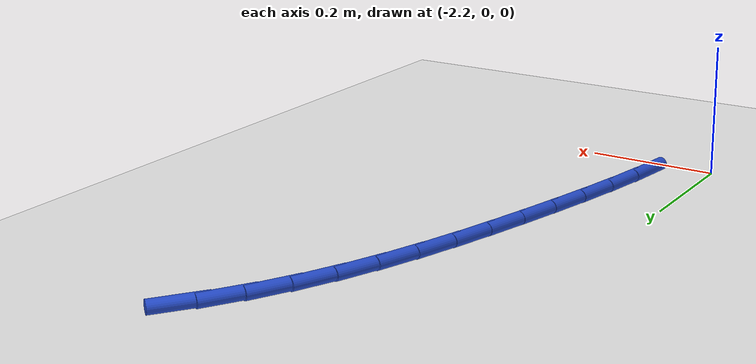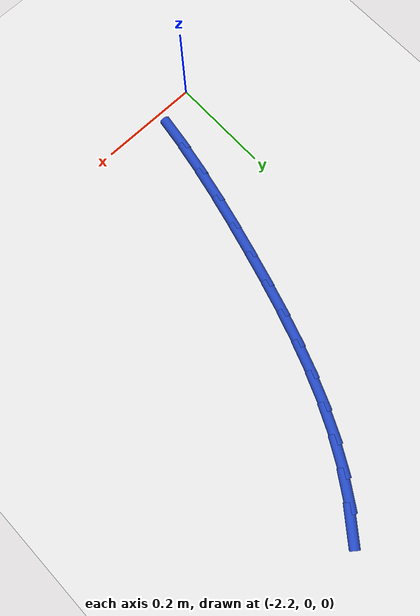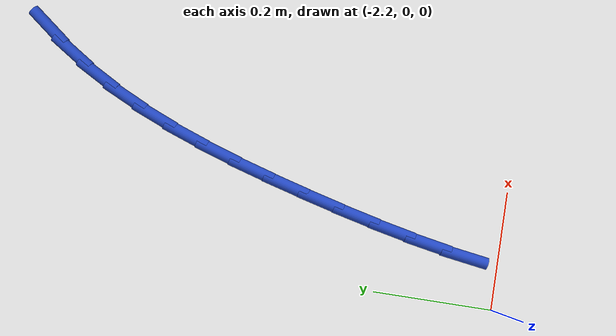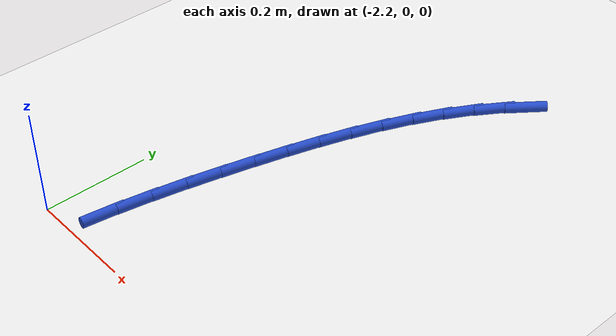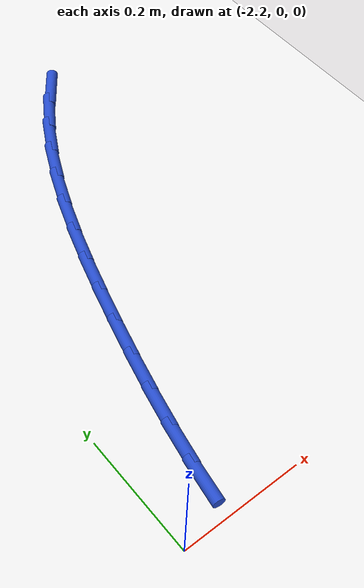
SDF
<sdf version="1.6">
 <world name="default">
  <model name="ground_plane">
   <static>1</static>
   <link name="link">
    <collision name="collision">
     <geometry><plane><normal>0 0 1</normal><size>100 100</size></plane></geometry>
     <surface><friction><ode><mu>100</mu><mu2>50</mu2></ode></friction></surface>
    </collision>
    <visual name="visual">
     <cast_shadows>0</cast_shadows>
     <geometry><plane><normal>0 0 1</normal><size>100 100</size></plane></geometry>
     <material>
      <script><uri>file://media/materials/scripts/gazebo.material</uri><name>Gazebo/WhiteGlow</name></script>
     </material>
    </visual>
   </link>
  </model>
  <model name="line">
   <link name="link_41">
    <pose>-1.8425104552891545 0.8127185309470454 0.01 0 1.57 0.9106029460889032</pose>
    <collision name="collision">
     <geometry><cylinder><radius>0.01</radius><length>0.08</length></cylinder></geometry>
    </collision>
    <visual name="visual">
     <material>
      <script><name>Gazebo/Blue</name><uri>file://media/materials/scripts/gazebo.material</uri></script>
     </material>
     <geometry><cylinder><radius>0.01</radius><length>0.08</length></cylinder></geometry>
    </visual>
   </link>
   <link name="link_42">
    <pose>-1.8786217293413534 0.7662082466428953 0.01 0 1.57 0.9939504107751688</pose>
    <collision name="collision">
     <geometry><cylinder><radius>0.01</radius><length>0.08</length></cylinder></geometry>
    </collision>
    <visual name="visual">
     <material>
      <script><name>Gazebo/Blue</name><uri>file://media/materials/scripts/gazebo.material</uri></script>
     </material>
     <geometry><cylinder><radius>0.01</radius><length>0.08</length></cylinder></geometry>
    </visual>
   </link>
   <link name="link_43">
    <pose>-1.9108846272863615 0.716624111231179 0.01 0 1.57 1.0674056970246177</pose>
    <collision name="collision">
     <geometry><cylinder><radius>0.01</radius><length>0.08</length></cylinder></geometry>
    </collision>
    <visual name="visual">
     <material>
      <script><name>Gazebo/Blue</name><uri>file://media/materials/scripts/gazebo.material</uri></script>
     </material>
     <geometry><cylinder><radius>0.01</radius><length>0.08</length></cylinder></geometry>
    </visual>
   </link>
   <link name="link_44">
    <pose>-1.9397054802930875 0.6642904254776733 0.01 0 1.57 1.1307111406427612</pose>
    <collision name="collision">
     <geometry><cylinder><radius>0.01</radius><length>0.08</length></cylinder></geometry>
    </collision>
    <visual name="visual">
     <material>
      <script><name>Gazebo/Blue</name><uri>file://media/materials/scripts/gazebo.material</uri></script>
     </material>
     <geometry><cylinder><radius>0.01</radius><length>0.08</length></cylinder></geometry>
    </visual>
   </link>
   <link name="link_45">
    <pose>-1.9654906195304385 0.6095314901481559 0.01 0 1.57 1.1840621209174622</pose>
    <collision name="collision">
     <geometry><cylinder><radius>0.01</radius><length>0.08</length></cylinder></geometry>
    </collision>
    <visual name="visual">
     <material>
      <script><name>Gazebo/Blue</name><uri>file://media/materials/scripts/gazebo.material</uri></script>
     </material>
     <geometry><cylinder><radius>0.01</radius><length>0.08</length></cylinder></geometry>
    </visual>
   </link>
   <link name="link_46">
    <pose>-1.9886463761673239 0.5526716060084047 0.01 0 1.57 1.2279072085645704</pose>
    <collision name="collision">
     <geometry><cylinder><radius>0.01</radius><length>0.08</length></cylinder></geometry>
    </collision>
    <visual name="visual">
     <material>
      <script><name>Gazebo/Blue</name><uri>file://media/materials/scripts/gazebo.material</uri></script>
     </material>
     <geometry><cylinder><radius>0.01</radius><length>0.08</length></cylinder></geometry>
    </visual>
   </link>
   <link name="link_47">
    <pose>-2.009579081372651 0.4940350738241971 0.01 0 1.57 1.262791965256842</pose>
    <collision name="collision">
     <geometry><cylinder><radius>0.01</radius><length>0.08</length></cylinder></geometry>
    </collision>
    <visual name="visual">
     <material>
      <script><name>Gazebo/Blue</name><uri>file://media/materials/scripts/gazebo.material</uri></script>
     </material>
     <geometry><cylinder><radius>0.01</radius><length>0.08</length></cylinder></geometry>
    </visual>
   </link>
   <link name="link_48">
    <pose>-2.028695066315329 0.4339461943613108 0.01 0 1.57 1.2892519654261205</pose>
    <collision name="collision">
     <geometry><cylinder><radius>0.01</radius><length>0.08</length></cylinder></geometry>
    </collision>
    <visual name="visual">
     <material>
      <script><name>Gazebo/Blue</name><uri>file://media/materials/scripts/gazebo.material</uri></script>
     </material>
     <geometry><cylinder><radius>0.01</radius><length>0.08</length></cylinder></geometry>
    </visual>
   </link>
   <link name="link_49">
    <pose>-2.0464006621642667 0.37272926838552345 0.01 0 1.57 1.3077807807371071</pose>
    <collision name="collision">
     <geometry><cylinder><radius>0.01</radius><length>0.08</length></cylinder></geometry>
    </collision>
    <visual name="visual">
     <material>
      <script><name>Gazebo/Blue</name><uri>file://media/materials/scripts/gazebo.material</uri></script>
     </material>
     <geometry><cylinder><radius>0.01</radius><length>0.08</length></cylinder></geometry>
    </visual>
   </link>
   <link name="link_50">
    <pose>-2.063100034736232 0.31070816987575517 0.01 0 1.57 1.3225103574537078</pose>
    <collision name="collision">
     <geometry><cylinder><radius>0.01</radius><length>0.08</length></cylinder></geometry>
    </collision>
    <visual name="visual">
     <material>
      <script><name>Gazebo/Blue</name><uri>file://media/materials/scripts/gazebo.material</uri></script>
     </material>
     <geometry><cylinder><radius>0.01</radius><length>0.08</length></cylinder></geometry>
    </visual>
   </link>
   <link name="link_51">
    <pose>-2.0789571971453844 0.24815943916233674 0.01 0 1.57 1.3408158514271311</pose>
    <collision name="collision">
     <geometry><cylinder><radius>0.01</radius><length>0.08</length></cylinder></geometry>
    </collision>
    <visual name="visual">
     <material>
      <script><name>Gazebo/Blue</name><uri>file://media/materials/scripts/gazebo.material</uri></script>
     </material>
     <geometry><cylinder><radius>0.01</radius><length>0.08</length></cylinder></geometry>
    </visual>
   </link>
   <link name="link_52">
    <pose>-2.093681065907569 0.18526991788712038 0.01 0 1.57 1.3636899039807249</pose>
    <collision name="collision">
     <geometry><cylinder><radius>0.01</radius><length>0.08</length></cylinder></geometry>
    </collision>
    <visual name="visual">
     <material>
      <script><name>Gazebo/Blue</name><uri>file://media/materials/scripts/gazebo.material</uri></script>
     </material>
     <geometry><cylinder><radius>0.01</radius><length>0.08</length></cylinder></geometry>
    </visual>
   </link>
   <link name="link_53">
    <pose>-2.1069298152242633 0.12221644647668628 0.01 0 1.57 1.3914053605630432</pose>
    <collision name="collision">
     <geometry><cylinder><radius>0.01</radius><length>0.08</length></cylinder></geometry>
    </collision>
    <visual name="visual">
     <material>
      <script><name>Gazebo/Blue</name><uri>file://media/materials/scripts/gazebo.material</uri></script>
     </material>
     <geometry><cylinder><radius>0.01</radius><length>0.08</length></cylinder></geometry>
    </visual>
   </link>
   <link name="link_54">
    <pose>-2.1183616192969446 0.05917586535761479 0.01 0 1.57 1.4243128220110362</pose>
    <collision name="collision">
     <geometry><cylinder><radius>0.01</radius><length>0.08</length></cylinder></geometry>
    </collision>
    <visual name="visual">
     <material>
      <script><name>Gazebo/Blue</name><uri>file://media/materials/scripts/gazebo.material</uri></script>
     </material>
     <geometry><cylinder><radius>0.01</radius><length>0.08</length></cylinder></geometry>
    </visual>
   </link>
  </model>
 </world>
</sdf>
